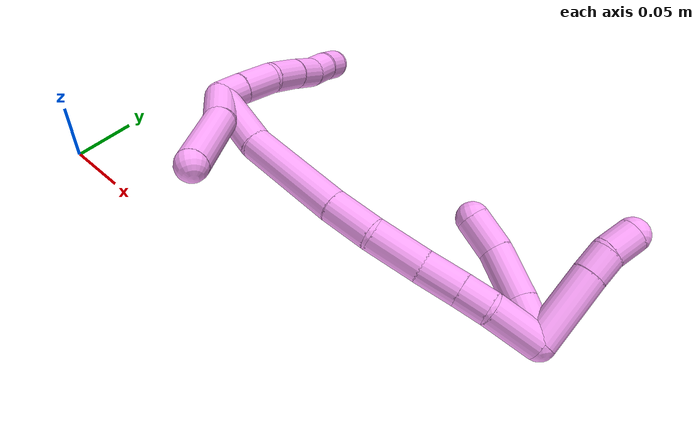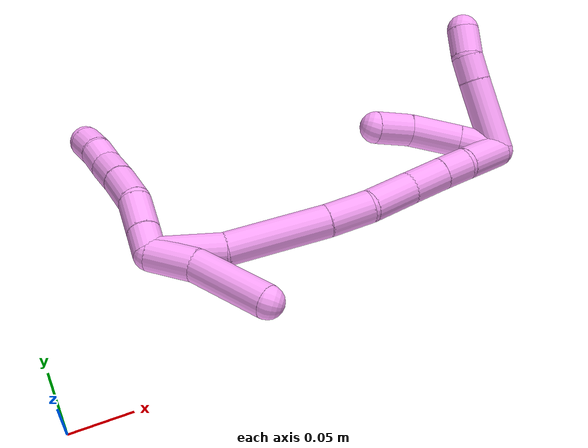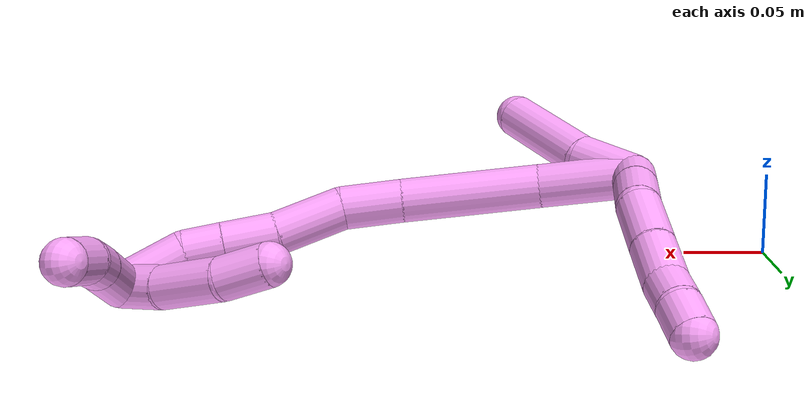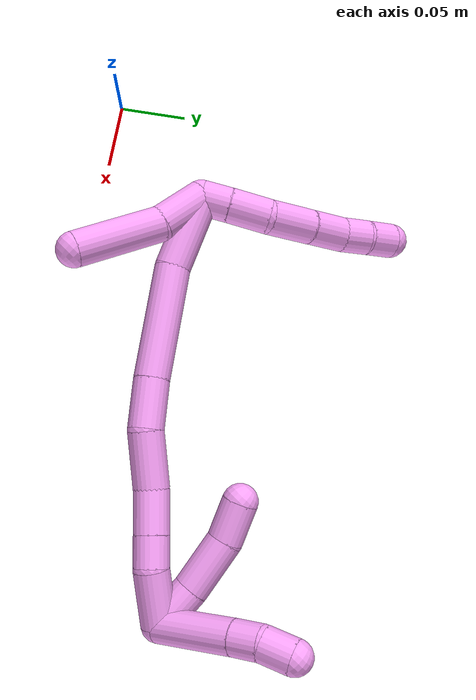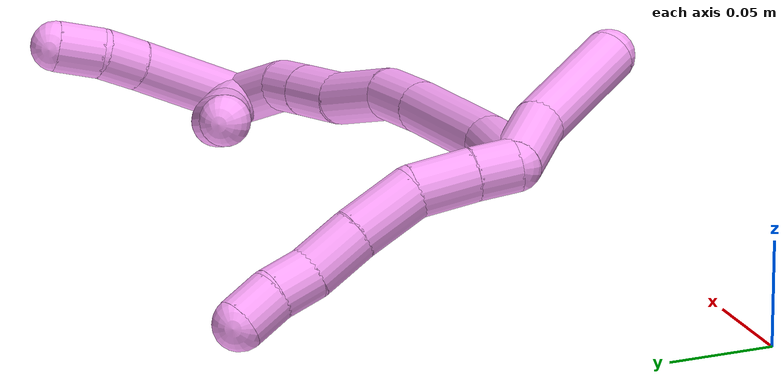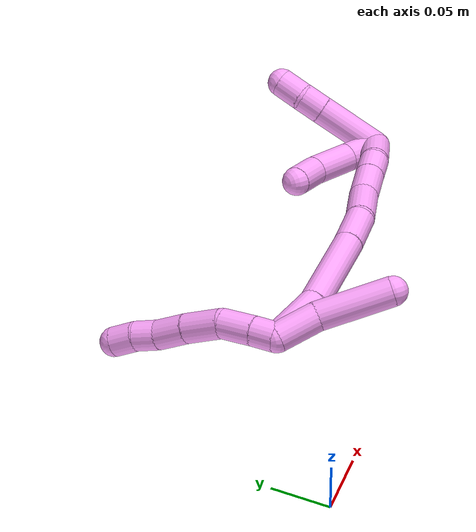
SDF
<sdf version="1.7">
 <world name="default">
  <model name="4">
   <static>0</static>
   <link name="4">
    <collision name="collision-cylinder-e_1_2_8">
     <pose>0.004268 -0.00769 0.004941 0.999747 0.436856 0.241275</pose>
     <geometry><cylinder><radius>0.0125</radius><length>0.020176</length></cylinder></geometry>
     <surface>
      <friction><ode><mu>1.16</mu><mu2>1.16</mu2><slip1>0</slip1><slip2>0</slip2></ode></friction>
      <contact><ode><kp>1e+06</kp><kd>1</kd><max_vel>0</max_vel><min_depth>0.001</min_depth></ode></contact>
     </surface>
    </collision>
    <visual name="visual-cylinder-e_1_2_8">
     <pose>0.004268 -0.00769 0.004941 0.999747 0.436856 0.241275</pose>
     <geometry><cylinder><radius>0.0125</radius><length>0.020176</length></cylinder></geometry>
     <material><ambient>1 0.65098 0.996078 1</ambient></material>
    </visual>
    <collision name="collision-cylinder-e_2_8_9">
     <pose>0.01532 -0.026075 0.016787 0.99747 0.489591 0.270458</pose>
     <geometry><cylinder><radius>0.0125</radius><length>0.02885</length></cylinder></geometry>
     <surface>
      <friction><ode><mu>1.16</mu><mu2>1.16</mu2><slip1>0</slip1><slip2>0</slip2></ode></friction>
      <contact><ode><kp>1e+06</kp><kd>1</kd><max_vel>0</max_vel><min_depth>0.001</min_depth></ode></contact>
     </surface>
    </collision>
    <visual name="visual-cylinder-e_2_8_9">
     <pose>0.01532 -0.026075 0.016787 0.99747 0.489591 0.270458</pose>
     <geometry><cylinder><radius>0.0125</radius><length>0.02885</length></cylinder></geometry>
     <material><ambient>1 0.65098 0.996078 1</ambient></material>
    </visual>
    <collision name="collision-cylinder-e_3_9_10">
     <pose>0.0337 -0.044835 0.03238 0.748259 0.7744 0.317516</pose>
     <geometry><cylinder><radius>0.0125</radius><length>0.033166</length></cylinder></geometry>
     <surface>
      <friction><ode><mu>1.16</mu><mu2>1.16</mu2><slip1>0</slip1><slip2>0</slip2></ode></friction>
      <contact><ode><kp>1e+06</kp><kd>1</kd><max_vel>0</max_vel><min_depth>0.001</min_depth></ode></contact>
     </surface>
    </collision>
    <visual name="visual-cylinder-e_3_9_10">
     <pose>0.0337 -0.044835 0.03238 0.748259 0.7744 0.317516</pose>
     <geometry><cylinder><radius>0.0125</radius><length>0.033166</length></cylinder></geometry>
     <material><ambient>1 0.65098 0.996078 1</ambient></material>
    </visual>
    <collision name="collision-cylinder-e_4_10_11">
     <pose>0.05544 -0.058745 0.04815 0.689924 0.83507 0.316151</pose>
     <geometry><cylinder><radius>0.0125</radius><length>0.027366</length></cylinder></geometry>
     <surface>
      <friction><ode><mu>1.16</mu><mu2>1.16</mu2><slip1>0</slip1><slip2>0</slip2></ode></friction>
      <contact><ode><kp>1e+06</kp><kd>1</kd><max_vel>0</max_vel><min_depth>0.001</min_depth></ode></contact>
     </surface>
    </collision>
    <visual name="visual-cylinder-e_4_10_11">
     <pose>0.05544 -0.058745 0.04815 0.689924 0.83507 0.316151</pose>
     <geometry><cylinder><radius>0.0125</radius><length>0.027366</length></cylinder></geometry>
     <material><ambient>1 0.65098 0.996078 1</ambient></material>
    </visual>
    <collision name="collision-cylinder-e_5_11_12">
     <pose>0.071428 -0.069936 0.061456 0.709692 0.618962 0.235858</pose>
     <geometry><cylinder><radius>0.0125</radius><length>0.020145</length></cylinder></geometry>
     <surface>
      <friction><ode><mu>1.16</mu><mu2>1.16</mu2><slip1>0</slip1><slip2>0</slip2></ode></friction>
      <contact><ode><kp>1e+06</kp><kd>1</kd><max_vel>0</max_vel><min_depth>0.001</min_depth></ode></contact>
     </surface>
    </collision>
    <visual name="visual-cylinder-e_5_11_12">
     <pose>0.071428 -0.069936 0.061456 0.709692 0.618962 0.235858</pose>
     <geometry><cylinder><radius>0.0125</radius><length>0.020145</length></cylinder></geometry>
     <material><ambient>1 0.65098 0.996078 1</ambient></material>
    </visual>
    <collision name="collision-cylinder-e_6_12_6">
     <pose>0.084444 -0.079257 0.073658 0.586784 0.784869 0.248798</pose>
     <geometry><cylinder><radius>0.0125</radius><length>0.020297</length></cylinder></geometry>
     <surface>
      <friction><ode><mu>1.16</mu><mu2>1.16</mu2><slip1>0</slip1><slip2>0</slip2></ode></friction>
      <contact><ode><kp>1e+06</kp><kd>1</kd><max_vel>0</max_vel><min_depth>0.001</min_depth></ode></contact>
     </surface>
    </collision>
    <visual name="visual-cylinder-e_6_12_6">
     <pose>0.084444 -0.079257 0.073658 0.586784 0.784869 0.248798</pose>
     <geometry><cylinder><radius>0.0125</radius><length>0.020297</length></cylinder></geometry>
     <material><ambient>1 0.65098 0.996078 1</ambient></material>
    </visual>
    <collision name="collision-cylinder-e_1_2_13">
     <pose>-0.006607 -0.000155 -0.017031 3.1325 -0.370074 -3.09301</pose>
     <geometry><cylinder><radius>0.0125</radius><length>0.036537</length></cylinder></geometry>
     <surface>
      <friction><ode><mu>1.16</mu><mu2>1.16</mu2><slip1>0</slip1><slip2>0</slip2></ode></friction>
      <contact><ode><kp>1e+06</kp><kd>1</kd><max_vel>0</max_vel><min_depth>0.001</min_depth></ode></contact>
     </surface>
    </collision>
    <visual name="visual-cylinder-e_1_2_13">
     <pose>-0.006607 -0.000155 -0.017031 3.1325 -0.370074 -3.09301</pose>
     <geometry><cylinder><radius>0.0125</radius><length>0.036537</length></cylinder></geometry>
     <material><ambient>1 0.65098 0.996078 1</ambient></material>
    </visual>
    <collision name="collision-cylinder-e_2_13_5">
     <pose>-0.028283 0.006665 -0.061103 -2.88915 -0.494806 2.21046</pose>
     <geometry><cylinder><radius>0.0125</radius><length>0.063463</length></cylinder></geometry>
     <surface>
      <friction><ode><mu>1.16</mu><mu2>1.16</mu2><slip1>0</slip1><slip2>0</slip2></ode></friction>
      <contact><ode><kp>1e+06</kp><kd>1</kd><max_vel>0</max_vel><min_depth>0.001</min_depth></ode></contact>
     </surface>
    </collision>
    <visual name="visual-cylinder-e_2_13_5">
     <pose>-0.028283 0.006665 -0.061103 -2.88915 -0.494806 2.21046</pose>
     <geometry><cylinder><radius>0.0125</radius><length>0.063463</length></cylinder></geometry>
     <material><ambient>1 0.65098 0.996078 1</ambient></material>
    </visual>
    <collision name="collision-cylinder-e_1_2_14">
     <pose>0.00262 -0.010182 -0.024757 2.75139 0.097553 0.484354</pose>
     <geometry><cylinder><radius>0.0125</radius><length>0.053793</length></cylinder></geometry>
     <surface>
      <friction><ode><mu>1.16</mu><mu2>1.16</mu2><slip1>0</slip1><slip2>0</slip2></ode></friction>
      <contact><ode><kp>1e+06</kp><kd>1</kd><max_vel>0</max_vel><min_depth>0.001</min_depth></ode></contact>
     </surface>
    </collision>
    <visual name="visual-cylinder-e_1_2_14">
     <pose>0.00262 -0.010182 -0.024757 2.75139 0.097553 0.484354</pose>
     <geometry><cylinder><radius>0.0125</radius><length>0.053793</length></cylinder></geometry>
     <material><ambient>1 0.65098 0.996078 1</ambient></material>
    </visual>
    <collision name="collision-cylinder-e_2_14_15">
     <pose>0.010233 -0.042653 -0.081929 2.53924 0.126253 0.401509</pose>
     <geometry><cylinder><radius>0.0125</radius><length>0.079309</length></cylinder></geometry>
     <surface>
      <friction><ode><mu>1.16</mu><mu2>1.16</mu2><slip1>0</slip1><slip2>0</slip2></ode></friction>
      <contact><ode><kp>1e+06</kp><kd>1</kd><max_vel>0</max_vel><min_depth>0.001</min_depth></ode></contact>
     </surface>
    </collision>
    <visual name="visual-cylinder-e_2_14_15">
     <pose>0.010233 -0.042653 -0.081929 2.53924 0.126253 0.401509</pose>
     <geometry><cylinder><radius>0.0125</radius><length>0.079309</length></cylinder></geometry>
     <material><ambient>1 0.65098 0.996078 1</ambient></material>
    </visual>
    <collision name="collision-cylinder-e_3_15_16">
     <pose>0.017826 -0.075575 -0.127887 2.47593 0.149896 0.427781</pose>
     <geometry><cylinder><radius>0.0125</radius><length>0.034828</length></cylinder></geometry>
     <surface>
      <friction><ode><mu>1.16</mu><mu2>1.16</mu2><slip1>0</slip1><slip2>0</slip2></ode></friction>
      <contact><ode><kp>1e+06</kp><kd>1</kd><max_vel>0</max_vel><min_depth>0.001</min_depth></ode></contact>
     </surface>
    </collision>
    <visual name="visual-cylinder-e_3_15_16">
     <pose>0.017826 -0.075575 -0.127887 2.47593 0.149896 0.427781</pose>
     <geometry><cylinder><radius>0.0125</radius><length>0.034828</length></cylinder></geometry>
     <material><ambient>1 0.65098 0.996078 1</ambient></material>
    </visual>
    <collision name="collision-cylinder-e_4_16_17">
     <pose>0.028414 -0.099245 -0.154331 2.35103 0.41074 0.926086</pose>
     <geometry><cylinder><radius>0.0125</radius><length>0.040008</length></cylinder></geometry>
     <surface>
      <friction><ode><mu>1.16</mu><mu2>1.16</mu2><slip1>0</slip1><slip2>0</slip2></ode></friction>
      <contact><ode><kp>1e+06</kp><kd>1</kd><max_vel>0</max_vel><min_depth>0.001</min_depth></ode></contact>
     </surface>
    </collision>
    <visual name="visual-cylinder-e_4_16_17">
     <pose>0.028414 -0.099245 -0.154331 2.35103 0.41074 0.926086</pose>
     <geometry><cylinder><radius>0.0125</radius><length>0.040008</length></cylinder></geometry>
     <material><ambient>1 0.65098 0.996078 1</ambient></material>
    </visual>
    <collision name="collision-cylinder-e_5_17_18">
     <pose>0.039846 -0.122551 -0.178006 2.38007 0.227398 0.555775</pose>
     <geometry><cylinder><radius>0.0125</radius><length>0.030557</length></cylinder></geometry>
     <surface>
      <friction><ode><mu>1.16</mu><mu2>1.16</mu2><slip1>0</slip1><slip2>0</slip2></ode></friction>
      <contact><ode><kp>1e+06</kp><kd>1</kd><max_vel>0</max_vel><min_depth>0.001</min_depth></ode></contact>
     </surface>
    </collision>
    <visual name="visual-cylinder-e_5_17_18">
     <pose>0.039846 -0.122551 -0.178006 2.38007 0.227398 0.555775</pose>
     <geometry><cylinder><radius>0.0125</radius><length>0.030557</length></cylinder></geometry>
     <material><ambient>1 0.65098 0.996078 1</ambient></material>
    </visual>
    <collision name="collision-cylinder-e_6_18_19">
     <pose>0.045878 -0.140101 -0.19672 2.39963 0.235699 0.590923</pose>
     <geometry><cylinder><radius>0.0125</radius><length>0.022156</length></cylinder></geometry>
     <surface>
      <friction><ode><mu>1.16</mu><mu2>1.16</mu2><slip1>0</slip1><slip2>0</slip2></ode></friction>
      <contact><ode><kp>1e+06</kp><kd>1</kd><max_vel>0</max_vel><min_depth>0.001</min_depth></ode></contact>
     </surface>
    </collision>
    <visual name="visual-cylinder-e_6_18_19">
     <pose>0.045878 -0.140101 -0.19672 2.39963 0.235699 0.590923</pose>
     <geometry><cylinder><radius>0.0125</radius><length>0.022156</length></cylinder></geometry>
     <material><ambient>1 0.65098 0.996078 1</ambient></material>
    </visual>
    <collision name="collision-cylinder-e_7_19_1">
     <pose>0.05851 -0.159298 -0.216666 2.35985 0.535892 1.17544</pose>
     <geometry><cylinder><radius>0.0125</radius><length>0.039348</length></cylinder></geometry>
     <surface>
      <friction><ode><mu>1.16</mu><mu2>1.16</mu2><slip1>0</slip1><slip2>0</slip2></ode></friction>
      <contact><ode><kp>1e+06</kp><kd>1</kd><max_vel>0</max_vel><min_depth>0.001</min_depth></ode></contact>
     </surface>
    </collision>
    <visual name="visual-cylinder-e_7_19_1">
     <pose>0.05851 -0.159298 -0.216666 2.35985 0.535892 1.17544</pose>
     <geometry><cylinder><radius>0.0125</radius><length>0.039348</length></cylinder></geometry>
     <material><ambient>1 0.65098 0.996078 1</ambient></material>
    </visual>
    <collision name="collision-cylinder-e_1_1_20">
     <pose>0.065111 -0.194301 -0.212295 0.953815 -0.121102 -0.062628</pose>
     <geometry><cylinder><radius>0.0125</radius><length>0.057025</length></cylinder></geometry>
     <surface>
      <friction><ode><mu>1.16</mu><mu2>1.16</mu2><slip1>0</slip1><slip2>0</slip2></ode></friction>
      <contact><ode><kp>1e+06</kp><kd>1</kd><max_vel>0</max_vel><min_depth>0.001</min_depth></ode></contact>
     </surface>
    </collision>
    <visual name="visual-cylinder-e_1_1_20">
     <pose>0.065111 -0.194301 -0.212295 0.953815 -0.121102 -0.062628</pose>
     <geometry><cylinder><radius>0.0125</radius><length>0.057025</length></cylinder></geometry>
     <material><ambient>1 0.65098 0.996078 1</ambient></material>
    </visual>
    <collision name="collision-cylinder-e_2_20_21">
     <pose>0.060766 -0.225826 -0.19031 0.984175 -0.08863 -0.047534</pose>
     <geometry><cylinder><radius>0.0125</radius><length>0.020348</length></cylinder></geometry>
     <surface>
      <friction><ode><mu>1.16</mu><mu2>1.16</mu2><slip1>0</slip1><slip2>0</slip2></ode></friction>
      <contact><ode><kp>1e+06</kp><kd>1</kd><max_vel>0</max_vel><min_depth>0.001</min_depth></ode></contact>
     </surface>
    </collision>
    <visual name="visual-cylinder-e_2_20_21">
     <pose>0.060766 -0.225826 -0.19031 0.984175 -0.08863 -0.047534</pose>
     <geometry><cylinder><radius>0.0125</radius><length>0.020348</length></cylinder></geometry>
     <material><ambient>1 0.65098 0.996078 1</ambient></material>
    </visual>
    <collision name="collision-cylinder-e_3_21_4">
     <pose>0.061028 -0.244618 -0.180286 1.16779 0.102888 0.068017</pose>
     <geometry><cylinder><radius>0.0125</radius><length>0.022627</length></cylinder></geometry>
     <surface>
      <friction><ode><mu>1.16</mu><mu2>1.16</mu2><slip1>0</slip1><slip2>0</slip2></ode></friction>
      <contact><ode><kp>1e+06</kp><kd>1</kd><max_vel>0</max_vel><min_depth>0.001</min_depth></ode></contact>
     </surface>
    </collision>
    <visual name="visual-cylinder-e_3_21_4">
     <pose>0.061028 -0.244618 -0.180286 1.16779 0.102888 0.068017</pose>
     <geometry><cylinder><radius>0.0125</radius><length>0.022627</length></cylinder></geometry>
     <material><ambient>1 0.65098 0.996078 1</ambient></material>
    </visual>
    <collision name="collision-cylinder-e_1_1_22">
     <pose>0.069112 -0.170301 -0.212901 -0.0579 0.035207 -0.00102</pose>
     <geometry><cylinder><radius>0.0125</radius><length>0.031613</length></cylinder></geometry>
     <surface>
      <friction><ode><mu>1.16</mu><mu2>1.16</mu2><slip1>0</slip1><slip2>0</slip2></ode></friction>
      <contact><ode><kp>1e+06</kp><kd>1</kd><max_vel>0</max_vel><min_depth>0.001</min_depth></ode></contact>
     </surface>
    </collision>
    <visual name="visual-cylinder-e_1_1_22">
     <pose>0.069112 -0.170301 -0.212901 -0.0579 0.035207 -0.00102</pose>
     <geometry><cylinder><radius>0.0125</radius><length>0.031613</length></cylinder></geometry>
     <material><ambient>1 0.65098 0.996078 1</ambient></material>
    </visual>
    <collision name="collision-cylinder-e_2_22_23">
     <pose>0.067524 -0.166907 -0.177392 -0.125024 -0.107371 0.006727</pose>
     <geometry><cylinder><radius>0.0125</radius><length>0.040017</length></cylinder></geometry>
     <surface>
      <friction><ode><mu>1.16</mu><mu2>1.16</mu2><slip1>0</slip1><slip2>0</slip2></ode></friction>
      <contact><ode><kp>1e+06</kp><kd>1</kd><max_vel>0</max_vel><min_depth>0.001</min_depth></ode></contact>
     </surface>
    </collision>
    <visual name="visual-cylinder-e_2_22_23">
     <pose>0.067524 -0.166907 -0.177392 -0.125024 -0.107371 0.006727</pose>
     <geometry><cylinder><radius>0.0125</radius><length>0.040017</length></cylinder></geometry>
     <material><ambient>1 0.65098 0.996078 1</ambient></material>
    </visual>
    <collision name="collision-cylinder-e_3_23_3">
     <pose>0.061556 -0.160225 -0.144657 -0.312621 -0.272973 0.043282</pose>
     <geometry><cylinder><radius>0.0125</radius><length>0.02837</length></cylinder></geometry>
     <surface>
      <friction><ode><mu>1.16</mu><mu2>1.16</mu2><slip1>0</slip1><slip2>0</slip2></ode></friction>
      <contact><ode><kp>1e+06</kp><kd>1</kd><max_vel>0</max_vel><min_depth>0.001</min_depth></ode></contact>
     </surface>
    </collision>
    <visual name="visual-cylinder-e_3_23_3">
     <pose>0.061556 -0.160225 -0.144657 -0.312621 -0.272973 0.043282</pose>
     <geometry><cylinder><radius>0.0125</radius><length>0.02837</length></cylinder></geometry>
     <material><ambient>1 0.65098 0.996078 1</ambient></material>
    </visual>
    <collision name="collision-sphere-3">
     <pose>0.057732 -0.156024 -0.131659 0 -0 0</pose>
     <geometry><sphere><radius>0.0125</radius></sphere></geometry>
     <surface>
      <friction><ode><mu>1.16</mu><mu2>1.16</mu2><slip1>0</slip1><slip2>0</slip2></ode></friction>
      <contact><ode><kp>1e+06</kp><kd>1</kd><max_vel>0</max_vel><min_depth>0.001</min_depth></ode></contact>
     </surface>
    </collision>
    <visual name="visual-sphere-3">
     <pose>0.057732 -0.156024 -0.131659 0 -0 0</pose>
     <geometry><sphere><radius>0.0125</radius></sphere></geometry>
     <material><ambient>1 0.65098 0.996078 1</ambient></material>
    </visual>
    <collision name="collision-sphere-23">
     <pose>0.06538 -0.164426 -0.157654 0 -0 0</pose>
     <geometry><sphere><radius>0.0125</radius></sphere></geometry>
     <surface>
      <friction><ode><mu>1.16</mu><mu2>1.16</mu2><slip1>0</slip1><slip2>0</slip2></ode></friction>
      <contact><ode><kp>1e+06</kp><kd>1</kd><max_vel>0</max_vel><min_depth>0.001</min_depth></ode></contact>
     </surface>
    </collision>
    <visual name="visual-sphere-23">
     <pose>0.06538 -0.164426 -0.157654 0 -0 0</pose>
     <geometry><sphere><radius>0.0125</radius></sphere></geometry>
     <material><ambient>1 0.65098 0.996078 1</ambient></material>
    </visual>
    <collision name="collision-sphere-22">
     <pose>0.069669 -0.169387 -0.19713 0 -0 0</pose>
     <geometry><sphere><radius>0.0125</radius></sphere></geometry>
     <surface>
      <friction><ode><mu>1.16</mu><mu2>1.16</mu2><slip1>0</slip1><slip2>0</slip2></ode></friction>
      <contact><ode><kp>1e+06</kp><kd>1</kd><max_vel>0</max_vel><min_depth>0.001</min_depth></ode></contact>
     </surface>
    </collision>
    <visual name="visual-sphere-22">
     <pose>0.069669 -0.169387 -0.19713 0 -0 0</pose>
     <geometry><sphere><radius>0.0125</radius></sphere></geometry>
     <material><ambient>1 0.65098 0.996078 1</ambient></material>
    </visual>
    <collision name="collision-sphere-4">
     <pose>0.06219 -0.25497 -0.175873 0 -0 0</pose>
     <geometry><sphere><radius>0.0125</radius></sphere></geometry>
     <surface>
      <friction><ode><mu>1.16</mu><mu2>1.16</mu2><slip1>0</slip1><slip2>0</slip2></ode></friction>
      <contact><ode><kp>1e+06</kp><kd>1</kd><max_vel>0</max_vel><min_depth>0.001</min_depth></ode></contact>
     </surface>
    </collision>
    <visual name="visual-sphere-4">
     <pose>0.06219 -0.25497 -0.175873 0 -0 0</pose>
     <geometry><sphere><radius>0.0125</radius></sphere></geometry>
     <material><ambient>1 0.65098 0.996078 1</ambient></material>
    </visual>
    <collision name="collision-sphere-21">
     <pose>0.059866 -0.234265 -0.1847 0 -0 0</pose>
     <geometry><sphere><radius>0.0125</radius></sphere></geometry>
     <surface>
      <friction><ode><mu>1.16</mu><mu2>1.16</mu2><slip1>0</slip1><slip2>0</slip2></ode></friction>
      <contact><ode><kp>1e+06</kp><kd>1</kd><max_vel>0</max_vel><min_depth>0.001</min_depth></ode></contact>
     </surface>
    </collision>
    <visual name="visual-sphere-21">
     <pose>0.059866 -0.234265 -0.1847 0 -0 0</pose>
     <geometry><sphere><radius>0.0125</radius></sphere></geometry>
     <material><ambient>1 0.65098 0.996078 1</ambient></material>
    </visual>
    <collision name="collision-sphere-20">
     <pose>0.061667 -0.217386 -0.195919 0 -0 0</pose>
     <geometry><sphere><radius>0.0125</radius></sphere></geometry>
     <surface>
      <friction><ode><mu>1.16</mu><mu2>1.16</mu2><slip1>0</slip1><slip2>0</slip2></ode></friction>
      <contact><ode><kp>1e+06</kp><kd>1</kd><max_vel>0</max_vel><min_depth>0.001</min_depth></ode></contact>
     </surface>
    </collision>
    <visual name="visual-sphere-20">
     <pose>0.061667 -0.217386 -0.195919 0 -0 0</pose>
     <geometry><sphere><radius>0.0125</radius></sphere></geometry>
     <material><ambient>1 0.65098 0.996078 1</ambient></material>
    </visual>
    <collision name="collision-sphere-12">
     <pose>0.077272 -0.075282 0.067679 0 -0 0</pose>
     <geometry><sphere><radius>0.0125</radius></sphere></geometry>
     <surface>
      <friction><ode><mu>1.16</mu><mu2>1.16</mu2><slip1>0</slip1><slip2>0</slip2></ode></friction>
      <contact><ode><kp>1e+06</kp><kd>1</kd><max_vel>0</max_vel><min_depth>0.001</min_depth></ode></contact>
     </surface>
    </collision>
    <visual name="visual-sphere-12">
     <pose>0.077272 -0.075282 0.067679 0 -0 0</pose>
     <geometry><sphere><radius>0.0125</radius></sphere></geometry>
     <material><ambient>1 0.65098 0.996078 1</ambient></material>
    </visual>
    <collision name="collision-sphere-11">
     <pose>0.065584 -0.06459 0.055233 0 -0 0</pose>
     <geometry><sphere><radius>0.0125</radius></sphere></geometry>
     <surface>
      <friction><ode><mu>1.16</mu><mu2>1.16</mu2><slip1>0</slip1><slip2>0</slip2></ode></friction>
      <contact><ode><kp>1e+06</kp><kd>1</kd><max_vel>0</max_vel><min_depth>0.001</min_depth></ode></contact>
     </surface>
    </collision>
    <visual name="visual-sphere-11">
     <pose>0.065584 -0.06459 0.055233 0 -0 0</pose>
     <geometry><sphere><radius>0.0125</radius></sphere></geometry>
     <material><ambient>1 0.65098 0.996078 1</ambient></material>
    </visual>
    <collision name="collision-sphere-10">
     <pose>0.045296 -0.052901 0.041067 0 -0 0</pose>
     <geometry><sphere><radius>0.0125</radius></sphere></geometry>
     <surface>
      <friction><ode><mu>1.16</mu><mu2>1.16</mu2><slip1>0</slip1><slip2>0</slip2></ode></friction>
      <contact><ode><kp>1e+06</kp><kd>1</kd><max_vel>0</max_vel><min_depth>0.001</min_depth></ode></contact>
     </surface>
    </collision>
    <visual name="visual-sphere-10">
     <pose>0.045296 -0.052901 0.041067 0 -0 0</pose>
     <geometry><sphere><radius>0.0125</radius></sphere></geometry>
     <material><ambient>1 0.65098 0.996078 1</ambient></material>
    </visual>
    <collision name="collision-sphere-9">
     <pose>0.022103 -0.03677 0.023692 0 -0 0</pose>
     <geometry><sphere><radius>0.0125</radius></sphere></geometry>
     <surface>
      <friction><ode><mu>1.16</mu><mu2>1.16</mu2><slip1>0</slip1><slip2>0</slip2></ode></friction>
      <contact><ode><kp>1e+06</kp><kd>1</kd><max_vel>0</max_vel><min_depth>0.001</min_depth></ode></contact>
     </surface>
    </collision>
    <visual name="visual-sphere-9">
     <pose>0.022103 -0.03677 0.023692 0 -0 0</pose>
     <geometry><sphere><radius>0.0125</radius></sphere></geometry>
     <material><ambient>1 0.65098 0.996078 1</ambient></material>
    </visual>
    <collision name="collision-sphere-2">
     <geometry><sphere><radius>0.0125</radius></sphere></geometry>
     <surface>
      <friction><ode><mu>1.16</mu><mu2>1.16</mu2><slip1>0</slip1><slip2>0</slip2></ode></friction>
      <contact><ode><kp>1e+06</kp><kd>1</kd><max_vel>0</max_vel><min_depth>0.001</min_depth></ode></contact>
     </surface>
    </collision>
    <visual name="visual-sphere-2">
     <geometry><sphere><radius>0.0125</radius></sphere></geometry>
     <material><ambient>1 0.65098 0.996078 1</ambient></material>
    </visual>
    <collision name="collision-sphere-19">
     <pose>0.048465 -0.14738 -0.204661 0 -0 0</pose>
     <geometry><sphere><radius>0.0125</radius></sphere></geometry>
     <surface>
      <friction><ode><mu>1.16</mu><mu2>1.16</mu2><slip1>0</slip1><slip2>0</slip2></ode></friction>
      <contact><ode><kp>1e+06</kp><kd>1</kd><max_vel>0</max_vel><min_depth>0.001</min_depth></ode></contact>
     </surface>
    </collision>
    <visual name="visual-sphere-19">
     <pose>0.048465 -0.14738 -0.204661 0 -0 0</pose>
     <geometry><sphere><radius>0.0125</radius></sphere></geometry>
     <material><ambient>1 0.65098 0.996078 1</ambient></material>
    </visual>
    <collision name="collision-sphere-8">
     <pose>0.008536 -0.015381 0.009881 0 -0 0</pose>
     <geometry><sphere><radius>0.0125</radius></sphere></geometry>
     <surface>
      <friction><ode><mu>1.16</mu><mu2>1.16</mu2><slip1>0</slip1><slip2>0</slip2></ode></friction>
      <contact><ode><kp>1e+06</kp><kd>1</kd><max_vel>0</max_vel><min_depth>0.001</min_depth></ode></contact>
     </surface>
    </collision>
    <visual name="visual-sphere-8">
     <pose>0.008536 -0.015381 0.009881 0 -0 0</pose>
     <geometry><sphere><radius>0.0125</radius></sphere></geometry>
     <material><ambient>1 0.65098 0.996078 1</ambient></material>
    </visual>
    <collision name="collision-sphere-6">
     <pose>0.091616 -0.083232 0.079637 0 -0 0</pose>
     <geometry><sphere><radius>0.0125</radius></sphere></geometry>
     <surface>
      <friction><ode><mu>1.16</mu><mu2>1.16</mu2><slip1>0</slip1><slip2>0</slip2></ode></friction>
      <contact><ode><kp>1e+06</kp><kd>1</kd><max_vel>0</max_vel><min_depth>0.001</min_depth></ode></contact>
     </surface>
    </collision>
    <visual name="visual-sphere-6">
     <pose>0.091616 -0.083232 0.079637 0 -0 0</pose>
     <geometry><sphere><radius>0.0125</radius></sphere></geometry>
     <material><ambient>1 0.65098 0.996078 1</ambient></material>
    </visual>
    <collision name="collision-sphere-13">
     <pose>-0.013215 -0.00031 -0.034062 0 -0 0</pose>
     <geometry><sphere><radius>0.0125</radius></sphere></geometry>
     <surface>
      <friction><ode><mu>1.16</mu><mu2>1.16</mu2><slip1>0</slip1><slip2>0</slip2></ode></friction>
      <contact><ode><kp>1e+06</kp><kd>1</kd><max_vel>0</max_vel><min_depth>0.001</min_depth></ode></contact>
     </surface>
    </collision>
    <visual name="visual-sphere-13">
     <pose>-0.013215 -0.00031 -0.034062 0 -0 0</pose>
     <geometry><sphere><radius>0.0125</radius></sphere></geometry>
     <material><ambient>1 0.65098 0.996078 1</ambient></material>
    </visual>
    <collision name="collision-sphere-5">
     <pose>-0.043351 0.01364 -0.088143 0 -0 0</pose>
     <geometry><sphere><radius>0.0125</radius></sphere></geometry>
     <surface>
      <friction><ode><mu>1.16</mu><mu2>1.16</mu2><slip1>0</slip1><slip2>0</slip2></ode></friction>
      <contact><ode><kp>1e+06</kp><kd>1</kd><max_vel>0</max_vel><min_depth>0.001</min_depth></ode></contact>
     </surface>
    </collision>
    <visual name="visual-sphere-5">
     <pose>-0.043351 0.01364 -0.088143 0 -0 0</pose>
     <geometry><sphere><radius>0.0125</radius></sphere></geometry>
     <material><ambient>1 0.65098 0.996078 1</ambient></material>
    </visual>
    <collision name="collision-sphere-14">
     <pose>0.005239 -0.020364 -0.049513 0 -0 0</pose>
     <geometry><sphere><radius>0.0125</radius></sphere></geometry>
     <surface>
      <friction><ode><mu>1.16</mu><mu2>1.16</mu2><slip1>0</slip1><slip2>0</slip2></ode></friction>
      <contact><ode><kp>1e+06</kp><kd>1</kd><max_vel>0</max_vel><min_depth>0.001</min_depth></ode></contact>
     </surface>
    </collision>
    <visual name="visual-sphere-14">
     <pose>0.005239 -0.020364 -0.049513 0 -0 0</pose>
     <geometry><sphere><radius>0.0125</radius></sphere></geometry>
     <material><ambient>1 0.65098 0.996078 1</ambient></material>
    </visual>
    <collision name="collision-sphere-15">
     <pose>0.015226 -0.064941 -0.114344 0 -0 0</pose>
     <geometry><sphere><radius>0.0125</radius></sphere></geometry>
     <surface>
      <friction><ode><mu>1.16</mu><mu2>1.16</mu2><slip1>0</slip1><slip2>0</slip2></ode></friction>
      <contact><ode><kp>1e+06</kp><kd>1</kd><max_vel>0</max_vel><min_depth>0.001</min_depth></ode></contact>
     </surface>
    </collision>
    <visual name="visual-sphere-15">
     <pose>0.015226 -0.064941 -0.114344 0 -0 0</pose>
     <geometry><sphere><radius>0.0125</radius></sphere></geometry>
     <material><ambient>1 0.65098 0.996078 1</ambient></material>
    </visual>
    <collision name="collision-sphere-16">
     <pose>0.020427 -0.08621 -0.14143 0 -0 0</pose>
     <geometry><sphere><radius>0.0125</radius></sphere></geometry>
     <surface>
      <friction><ode><mu>1.16</mu><mu2>1.16</mu2><slip1>0</slip1><slip2>0</slip2></ode></friction>
      <contact><ode><kp>1e+06</kp><kd>1</kd><max_vel>0</max_vel><min_depth>0.001</min_depth></ode></contact>
     </surface>
    </collision>
    <visual name="visual-sphere-16">
     <pose>0.020427 -0.08621 -0.14143 0 -0 0</pose>
     <geometry><sphere><radius>0.0125</radius></sphere></geometry>
     <material><ambient>1 0.65098 0.996078 1</ambient></material>
    </visual>
    <collision name="collision-sphere-17">
     <pose>0.036402 -0.11228 -0.167232 0 -0 0</pose>
     <geometry><sphere><radius>0.0125</radius></sphere></geometry>
     <surface>
      <friction><ode><mu>1.16</mu><mu2>1.16</mu2><slip1>0</slip1><slip2>0</slip2></ode></friction>
      <contact><ode><kp>1e+06</kp><kd>1</kd><max_vel>0</max_vel><min_depth>0.001</min_depth></ode></contact>
     </surface>
    </collision>
    <visual name="visual-sphere-17">
     <pose>0.036402 -0.11228 -0.167232 0 -0 0</pose>
     <geometry><sphere><radius>0.0125</radius></sphere></geometry>
     <material><ambient>1 0.65098 0.996078 1</ambient></material>
    </visual>
    <collision name="collision-sphere-18">
     <pose>0.043291 -0.132823 -0.18878 0 -0 0</pose>
     <geometry><sphere><radius>0.0125</radius></sphere></geometry>
     <surface>
      <friction><ode><mu>1.16</mu><mu2>1.16</mu2><slip1>0</slip1><slip2>0</slip2></ode></friction>
      <contact><ode><kp>1e+06</kp><kd>1</kd><max_vel>0</max_vel><min_depth>0.001</min_depth></ode></contact>
     </surface>
    </collision>
    <visual name="visual-sphere-18">
     <pose>0.043291 -0.132823 -0.18878 0 -0 0</pose>
     <geometry><sphere><radius>0.0125</radius></sphere></geometry>
     <material><ambient>1 0.65098 0.996078 1</ambient></material>
    </visual>
    <collision name="collision-sphere-1">
     <pose>0.068556 -0.171215 -0.228671 0 -0 0</pose>
     <geometry><sphere><radius>0.0125</radius></sphere></geometry>
     <surface>
      <friction><ode><mu>1.16</mu><mu2>1.16</mu2><slip1>0</slip1><slip2>0</slip2></ode></friction>
      <contact><ode><kp>1e+06</kp><kd>1</kd><max_vel>0</max_vel><min_depth>0.001</min_depth></ode></contact>
     </surface>
    </collision>
    <visual name="visual-sphere-1">
     <pose>0.068556 -0.171215 -0.228671 0 -0 0</pose>
     <geometry><sphere><radius>0.0125</radius></sphere></geometry>
     <material><ambient>1 0.65098 0.996078 1</ambient></material>
    </visual>
    <inertial>
     <pose>0.032653 -0.090761 -0.098085 0 -0 0</pose>
     <mass>0.75</mass>
     <inertia><ixx>0.000163</ixx><ixy>0</ixy><ixz>0</ixz><iyy>4.1e-05</iyy><iyz>0</iyz><izz>5e-05</izz></inertia>
    </inertial>
   </link>
   <pose>0.094368 0.082967 0.065651 -1.00852 1.24863 1.49419</pose>
  </model>
 </world>
</sdf>
